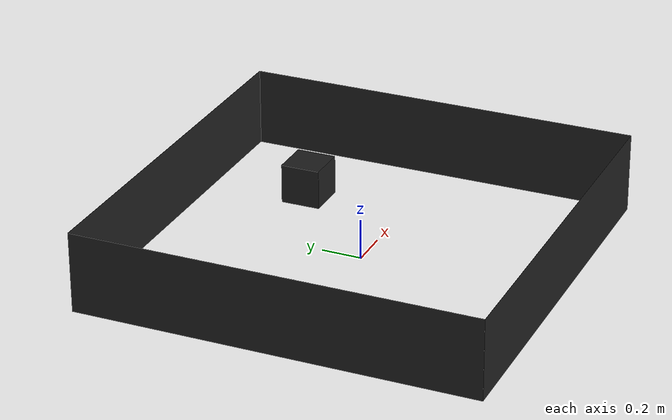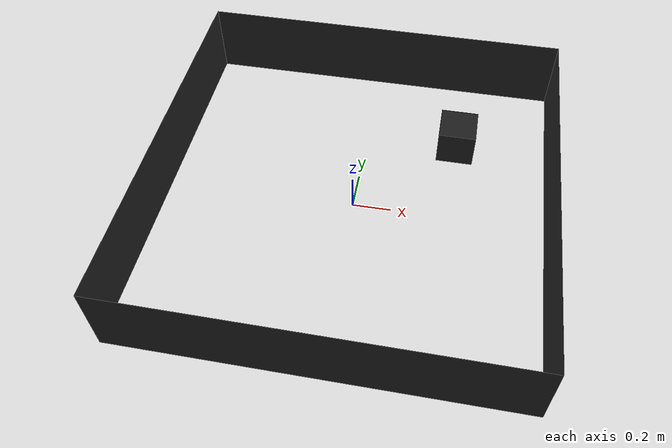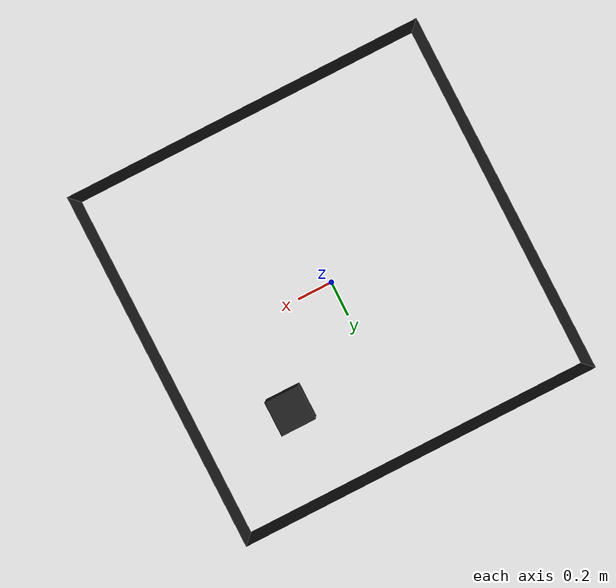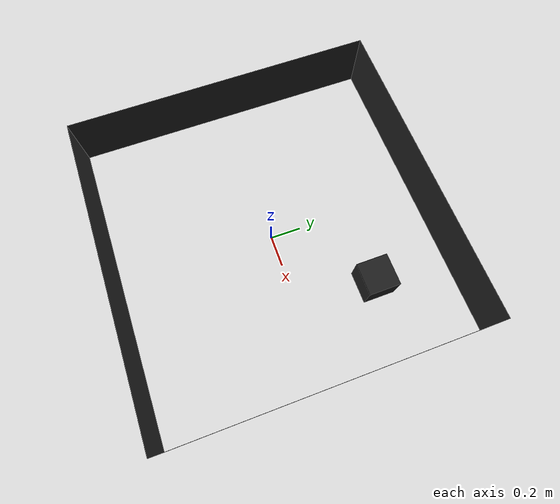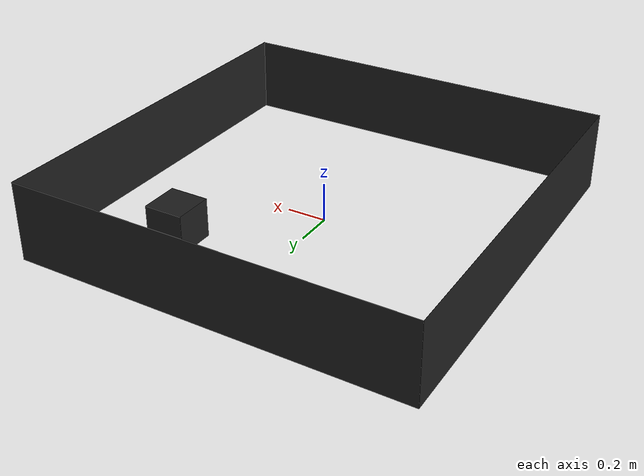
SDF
<sdf version="1.6">
 <world name="default">
  <physics type="ode"><gravity>0 0 0.0</gravity><max_step_size>0.001</max_step_size></physics>
  <light name="sun" type="directional">
   <pose>-11.8208 -19.3843 17.2198 0 -0 0</pose>
   <diffuse>0.7 0.7 0.7 1</diffuse>
   <specular>0.2 0.2 0.2 1</specular>
   <attenuation>
    <range>1000</range>
    <constant>0.9</constant>
    <linear>0.01</linear>
    <quadratic>0.001</quadratic>
   </attenuation>
   <direction>0.3698 0.4 -0.5</direction>
  </light>
  <model name="ground_plane_left">
   <pose>-1 0 0.2 1.5708 0 1.5708</pose>
   <static>true</static>
   <link name="link">
    <collision name="collisionground_plane_left">
     <geometry><plane><normal>0 0 1</normal><size>2 0.4</size></plane></geometry>
     <surface>
      <contact><collide_bitmask>0x10</collide_bitmask></contact>
      <friction><ode><mu>100</mu><mu2>50</mu2></ode></friction>
     </surface>
    </collision>
    <visual name="visual">
     <cast_shadows>false</cast_shadows>
     <geometry><plane><normal>0 0 1</normal><size>2 0.4</size></plane></geometry>
     <material>
      <script><uri>file://media/materials/scripts/gazebo.material</uri><name>Gazebo/Black</name></script>
     </material>
    </visual>
   </link>
  </model>
  <model name="ground_plane_right">
   <pose>1 0 0.2 1.5708 0 1.5708</pose>
   <static>true</static>
   <link name="link">
    <collision name="collisionground_plane_right">
     <geometry><plane><normal>0 0 1</normal><size>2 0.4</size></plane></geometry>
     <surface>
      <contact><collide_bitmask>0x10</collide_bitmask></contact>
      <friction><ode><mu>100</mu><mu2>50</mu2></ode></friction>
     </surface>
    </collision>
    <visual name="visual">
     <cast_shadows>false</cast_shadows>
     <geometry><plane><normal>0 0 1</normal><size>2 0.4</size></plane></geometry>
     <material>
      <script><uri>file://media/materials/scripts/gazebo.material</uri><name>Gazebo/Black</name></script>
     </material>
    </visual>
   </link>
  </model>
  <model name="ground_plane_front">
   <pose>0 -1 0.2 1.5708 0 0</pose>
   <static>true</static>
   <link name="link">
    <collision name="collisionground_plane_front">
     <geometry><plane><normal>0 0 1</normal><size>2 0.4</size></plane></geometry>
     <surface>
      <contact><collide_bitmask>0x10</collide_bitmask></contact>
      <friction><ode><mu>100</mu><mu2>50</mu2></ode></friction>
     </surface>
    </collision>
    <visual name="visual">
     <cast_shadows>false</cast_shadows>
     <geometry><plane><normal>0 0 1</normal><size>2 0.4</size></plane></geometry>
     <material>
      <script><uri>file://media/materials/scripts/gazebo.material</uri><name>Gazebo/Black</name></script>
     </material>
    </visual>
   </link>
  </model>
  <model name="ground_plane_back">
   <pose>0 1 0.2 -1.5708 0 3.14159</pose>
   <static>true</static>
   <link name="link">
    <collision name="collisionground_plane_back">
     <geometry><plane><normal>0 0 1</normal><size>2 0.4</size></plane></geometry>
     <surface>
      <contact><collide_bitmask>0x10</collide_bitmask></contact>
      <friction><ode><mu>100</mu><mu2>50</mu2></ode></friction>
     </surface>
    </collision>
    <visual name="visual">
     <cast_shadows>false</cast_shadows>
     <geometry><plane><normal>0 0 1</normal><size>2 0.4</size></plane></geometry>
     <material>
      <script><uri>file://media/materials/scripts/gazebo.material</uri><name>Gazebo/Black</name></script>
     </material>
    </visual>
   </link>
  </model>
  <model name="box">
   <pose>0.5 0.5 0.1 0 0 0</pose>
   <static>true</static>
   <link name="link">
    <inertial>
     <mass>4.0</mass>
     <inertia><ixx>0.332</ixx><ixy>0.0</ixy><ixz>0.0</ixz><iyy>0.332</iyy><iyz>0.0</iyz><izz>0.332</izz></inertia>
    </inertial>
    <collision name="box_collision">
     <surface>
      <contact><collide_bitmask>0x01</collide_bitmask></contact>
      <friction><ode><mu>100</mu><mu2>50</mu2></ode></friction>
     </surface>
     <geometry><box><size>0.2 0.2 0.2</size></box></geometry>
    </collision>
    <visual name="box_visual">
     <geometry><box><size>0.2 0.2 0.2</size></box></geometry>
     <material>
      <script><uri>file://media/materials/scripts/gazebo.material</uri><name>Gazebo/Black</name></script>
     </material>
    </visual>
   </link>
   <plugin name="FluidPlugin" filename="libGazeboFluidSimulator.so">
    <fluidConfiguration>
     <timeStepSize>0.001</timeStepSize>
     <particleRadius>0.025</particleRadius>
     <simulationMethod>4</simulationMethod>
     <gravitation>0 0 -9.81</gravitation>
     <cflMethod>0</cflMethod>
     <cflFactor>0.45</cflFactor>
     <cflMaxTimeStepSize>0.01</cflMaxTimeStepSize>
     <maxIterations>100</maxIterations>
     <maxError>0.05</maxError>
     <maxIterationsV>100</maxIterationsV>
     <maxErrorV>0.1</maxErrorV>
     <stiffness>50000</stiffness>
     <exponent>7</exponent>
     <enableDivergenceSolver>true</enableDivergenceSolver>
     <velocityUpdateMethod>0</velocityUpdateMethod>
     <boundaryHandlingMethod>0</boundaryHandlingMethod>
    </fluidConfiguration>
    <fluid><viscosity>0.01</viscosity><viscosityMethod>1</viscosityMethod></fluid>
    <fluidBlock><denseMode>0</denseMode><start>-0.3 -0.3 0.1</start><end>0.3 0.3 1.</end></fluidBlock>
    <fluidModels>
     <particleFile>../models/particle_grid.bgeo</particleFile>
     <translation>0.0 0.0 0.0</translation>
     <scale>1.0 1.0 1.0</scale>
    </fluidModels>
   </plugin>
  </model>
 </world>
</sdf>
